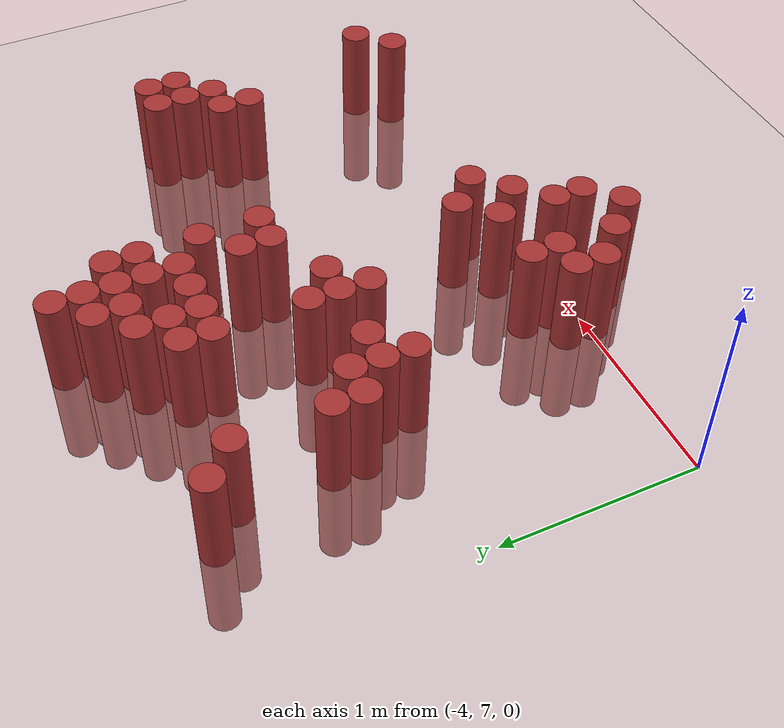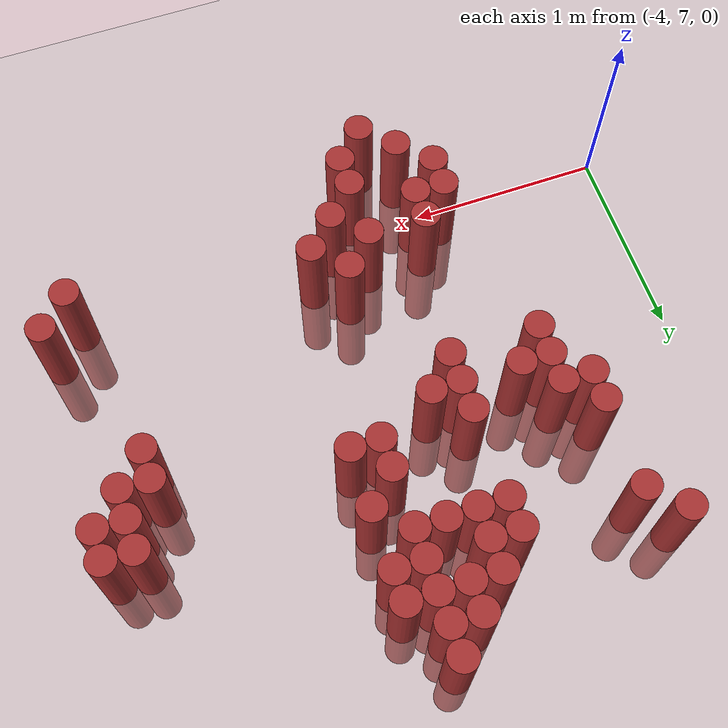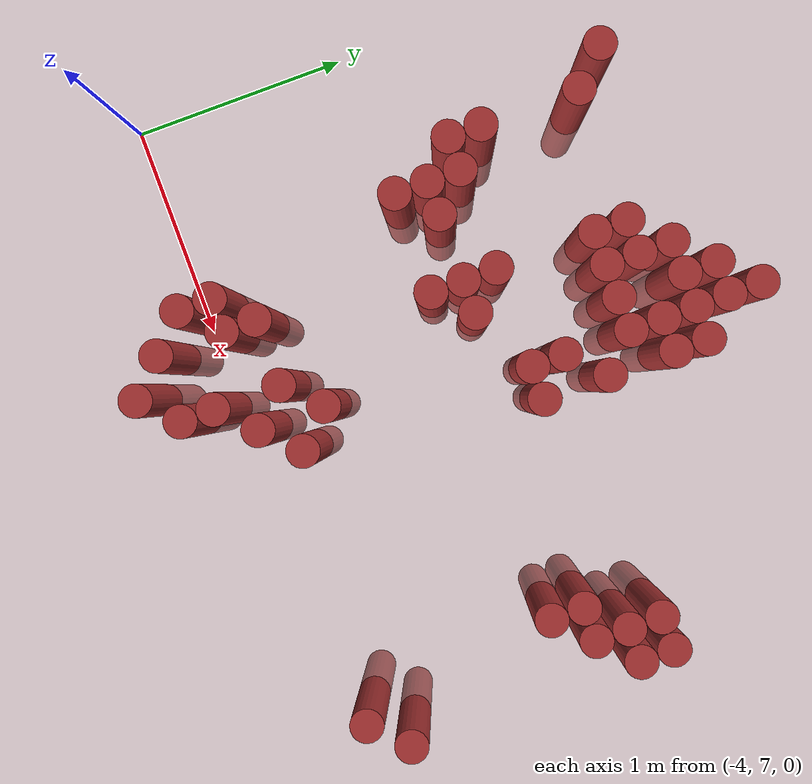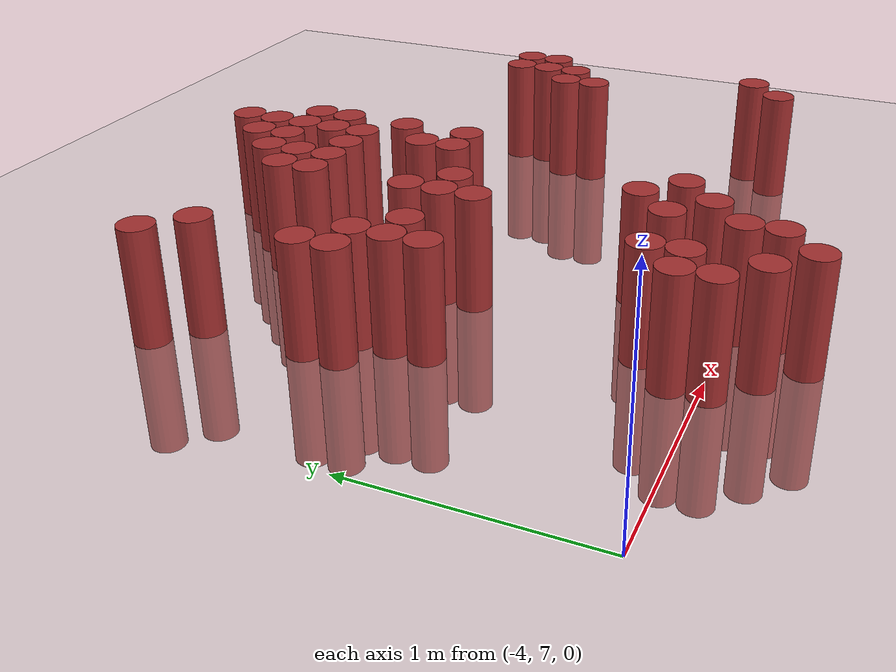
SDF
<sdf version="1.6">
 <world name="default">
  <model name="ground_plane">
   <static>1</static>
   <link name="link">
    <collision name="collision">
     <geometry><plane><normal>0 0 1</normal><size>100 100</size></plane></geometry>
     <surface><friction><ode><mu>100</mu><mu2>50</mu2></ode></friction></surface>
    </collision>
    <visual name="visual">
     <cast_shadows>0</cast_shadows>
     <geometry><plane><normal>0 0 1</normal><size>100 100</size></plane></geometry>
     <material>
      <script><uri>file://media/materials/scripts/gazebo.material</uri><name>Gazebo/Grey</name></script>
     </material>
    </visual>
   </link>
  </model>
  <model name="unit_cylinder_167">
   <static>1</static>
   <pose>-3.525000 9.075000 0.000000 0.000000 0.000000 0.000000</pose>
   <link name="link">
    <inertial>
     <mass>1</mass>
     <inertia><ixx>0.145833</ixx><ixy>0</ixy><ixz>0</ixz><iyy>0.145833</iyy><iyz>0</iyz><izz>0.125</izz></inertia>
    </inertial>
    <collision name="collision">
     <geometry><cylinder><radius>0.075000</radius><length>1</length></cylinder></geometry>
    </collision>
    <visual name="visual">
     <geometry><cylinder><radius>0.075000</radius><length>1</length></cylinder></geometry>
     <material>
      <ambient>0.648000 0.192000 0.192000 1</ambient>
      <diffuse>0.648000 0.192000 0.192000 1</diffuse>
     </material>
     <material>
      <script><name>Gazebo/Grey</name><uri>file://media/materials/scripts/gazebo.material</uri></script>
     </material>
    </visual>
   </link>
  </model>
  <model name="unit_cylinder_172">
   <static>1</static>
   <pose>-3.375000 8.325000 0.000000 0.000000 0.000000 0.000000</pose>
   <link name="link">
    <inertial>
     <mass>1</mass>
     <inertia><ixx>0.145833</ixx><ixy>0</ixy><ixz>0</ixz><iyy>0.145833</iyy><iyz>0</iyz><izz>0.125</izz></inertia>
    </inertial>
    <collision name="collision">
     <geometry><cylinder><radius>0.075000</radius><length>1</length></cylinder></geometry>
    </collision>
    <visual name="visual">
     <geometry><cylinder><radius>0.075000</radius><length>1</length></cylinder></geometry>
     <material>
      <ambient>0.648000 0.192000 0.192000 1</ambient>
      <diffuse>0.648000 0.192000 0.192000 1</diffuse>
     </material>
     <material>
      <script><name>Gazebo/Grey</name><uri>file://media/materials/scripts/gazebo.material</uri></script>
     </material>
    </visual>
   </link>
  </model>
  <model name="unit_cylinder_173">
   <static>1</static>
   <pose>-3.375000 8.475000 0.000000 0.000000 0.000000 0.000000</pose>
   <link name="link">
    <inertial>
     <mass>1</mass>
     <inertia><ixx>0.145833</ixx><ixy>0</ixy><ixz>0</ixz><iyy>0.145833</iyy><iyz>0</iyz><izz>0.125</izz></inertia>
    </inertial>
    <collision name="collision">
     <geometry><cylinder><radius>0.075000</radius><length>1</length></cylinder></geometry>
    </collision>
    <visual name="visual">
     <geometry><cylinder><radius>0.075000</radius><length>1</length></cylinder></geometry>
     <material>
      <ambient>0.648000 0.192000 0.192000 1</ambient>
      <diffuse>0.648000 0.192000 0.192000 1</diffuse>
     </material>
     <material>
      <script><name>Gazebo/Grey</name><uri>file://media/materials/scripts/gazebo.material</uri></script>
     </material>
    </visual>
   </link>
  </model>
  <model name="unit_cylinder_174">
   <static>1</static>
   <pose>-3.375000 8.925000 0.000000 0.000000 0.000000 0.000000</pose>
   <link name="link">
    <inertial>
     <mass>1</mass>
     <inertia><ixx>0.145833</ixx><ixy>0</ixy><ixz>0</ixz><iyy>0.145833</iyy><iyz>0</iyz><izz>0.125</izz></inertia>
    </inertial>
    <collision name="collision">
     <geometry><cylinder><radius>0.075000</radius><length>1</length></cylinder></geometry>
    </collision>
    <visual name="visual">
     <geometry><cylinder><radius>0.075000</radius><length>1</length></cylinder></geometry>
     <material>
      <ambient>0.648000 0.192000 0.192000 1</ambient>
      <diffuse>0.648000 0.192000 0.192000 1</diffuse>
     </material>
     <material>
      <script><name>Gazebo/Grey</name><uri>file://media/materials/scripts/gazebo.material</uri></script>
     </material>
    </visual>
   </link>
  </model>
  <model name="unit_cylinder_179">
   <static>1</static>
   <pose>-3.225000 8.025000 0.000000 0.000000 0.000000 0.000000</pose>
   <link name="link">
    <inertial>
     <mass>1</mass>
     <inertia><ixx>0.145833</ixx><ixy>0</ixy><ixz>0</ixz><iyy>0.145833</iyy><iyz>0</iyz><izz>0.125</izz></inertia>
    </inertial>
    <collision name="collision">
     <geometry><cylinder><radius>0.075000</radius><length>1</length></cylinder></geometry>
    </collision>
    <visual name="visual">
     <geometry><cylinder><radius>0.075000</radius><length>1</length></cylinder></geometry>
     <material>
      <ambient>0.648000 0.192000 0.192000 1</ambient>
      <diffuse>0.648000 0.192000 0.192000 1</diffuse>
     </material>
     <material>
      <script><name>Gazebo/Grey</name><uri>file://media/materials/scripts/gazebo.material</uri></script>
     </material>
    </visual>
   </link>
  </model>
  <model name="unit_cylinder_180">
   <static>1</static>
   <pose>-3.225000 8.175000 0.000000 0.000000 0.000000 0.000000</pose>
   <link name="link">
    <inertial>
     <mass>1</mass>
     <inertia><ixx>0.145833</ixx><ixy>0</ixy><ixz>0</ixz><iyy>0.145833</iyy><iyz>0</iyz><izz>0.125</izz></inertia>
    </inertial>
    <collision name="collision">
     <geometry><cylinder><radius>0.075000</radius><length>1</length></cylinder></geometry>
    </collision>
    <visual name="visual">
     <geometry><cylinder><radius>0.075000</radius><length>1</length></cylinder></geometry>
     <material>
      <ambient>0.648000 0.192000 0.192000 1</ambient>
      <diffuse>0.648000 0.192000 0.192000 1</diffuse>
     </material>
     <material>
      <script><name>Gazebo/Grey</name><uri>file://media/materials/scripts/gazebo.material</uri></script>
     </material>
    </visual>
   </link>
  </model>
  <model name="unit_cylinder_181">
   <static>1</static>
   <pose>-3.225000 8.325000 0.000000 0.000000 0.000000 0.000000</pose>
   <link name="link">
    <inertial>
     <mass>1</mass>
     <inertia><ixx>0.145833</ixx><ixy>0</ixy><ixz>0</ixz><iyy>0.145833</iyy><iyz>0</iyz><izz>0.125</izz></inertia>
    </inertial>
    <collision name="collision">
     <geometry><cylinder><radius>0.075000</radius><length>1</length></cylinder></geometry>
    </collision>
    <visual name="visual">
     <geometry><cylinder><radius>0.075000</radius><length>1</length></cylinder></geometry>
     <material>
      <ambient>0.648000 0.192000 0.192000 1</ambient>
      <diffuse>0.648000 0.192000 0.192000 1</diffuse>
     </material>
     <material>
      <script><name>Gazebo/Grey</name><uri>file://media/materials/scripts/gazebo.material</uri></script>
     </material>
    </visual>
   </link>
  </model>
  <model name="unit_cylinder_185">
   <static>1</static>
   <pose>-3.075000 6.975000 0.000000 0.000000 0.000000 0.000000</pose>
   <link name="link">
    <inertial>
     <mass>1</mass>
     <inertia><ixx>0.145833</ixx><ixy>0</ixy><ixz>0</ixz><iyy>0.145833</iyy><iyz>0</iyz><izz>0.125</izz></inertia>
    </inertial>
    <collision name="collision">
     <geometry><cylinder><radius>0.075000</radius><length>1</length></cylinder></geometry>
    </collision>
    <visual name="visual">
     <geometry><cylinder><radius>0.075000</radius><length>1</length></cylinder></geometry>
     <material>
      <ambient>0.648000 0.192000 0.192000 1</ambient>
      <diffuse>0.648000 0.192000 0.192000 1</diffuse>
     </material>
     <material>
      <script><name>Gazebo/Grey</name><uri>file://media/materials/scripts/gazebo.material</uri></script>
     </material>
    </visual>
   </link>
  </model>
  <model name="unit_cylinder_186">
   <static>1</static>
   <pose>-3.075000 7.125000 0.000000 0.000000 0.000000 0.000000</pose>
   <link name="link">
    <inertial>
     <mass>1</mass>
     <inertia><ixx>0.145833</ixx><ixy>0</ixy><ixz>0</ixz><iyy>0.145833</iyy><iyz>0</iyz><izz>0.125</izz></inertia>
    </inertial>
    <collision name="collision">
     <geometry><cylinder><radius>0.075000</radius><length>1</length></cylinder></geometry>
    </collision>
    <visual name="visual">
     <geometry><cylinder><radius>0.075000</radius><length>1</length></cylinder></geometry>
     <material>
      <ambient>0.648000 0.192000 0.192000 1</ambient>
      <diffuse>0.648000 0.192000 0.192000 1</diffuse>
     </material>
     <material>
      <script><name>Gazebo/Grey</name><uri>file://media/materials/scripts/gazebo.material</uri></script>
     </material>
    </visual>
   </link>
  </model>
  <model name="unit_cylinder_187">
   <static>1</static>
   <pose>-3.075000 8.175000 0.000000 0.000000 0.000000 0.000000</pose>
   <link name="link">
    <inertial>
     <mass>1</mass>
     <inertia><ixx>0.145833</ixx><ixy>0</ixy><ixz>0</ixz><iyy>0.145833</iyy><iyz>0</iyz><izz>0.125</izz></inertia>
    </inertial>
    <collision name="collision">
     <geometry><cylinder><radius>0.075000</radius><length>1</length></cylinder></geometry>
    </collision>
    <visual name="visual">
     <geometry><cylinder><radius>0.075000</radius><length>1</length></cylinder></geometry>
     <material>
      <ambient>0.648000 0.192000 0.192000 1</ambient>
      <diffuse>0.648000 0.192000 0.192000 1</diffuse>
     </material>
     <material>
      <script><name>Gazebo/Grey</name><uri>file://media/materials/scripts/gazebo.material</uri></script>
     </material>
    </visual>
   </link>
  </model>
  <model name="unit_cylinder_190">
   <static>1</static>
   <pose>-2.925000 6.825000 0.000000 0.000000 0.000000 0.000000</pose>
   <link name="link">
    <inertial>
     <mass>1</mass>
     <inertia><ixx>0.145833</ixx><ixy>0</ixy><ixz>0</ixz><iyy>0.145833</iyy><iyz>0</iyz><izz>0.125</izz></inertia>
    </inertial>
    <collision name="collision">
     <geometry><cylinder><radius>0.075000</radius><length>1</length></cylinder></geometry>
    </collision>
    <visual name="visual">
     <geometry><cylinder><radius>0.075000</radius><length>1</length></cylinder></geometry>
     <material>
      <ambient>0.648000 0.192000 0.192000 1</ambient>
      <diffuse>0.648000 0.192000 0.192000 1</diffuse>
     </material>
     <material>
      <script><name>Gazebo/Grey</name><uri>file://media/materials/scripts/gazebo.material</uri></script>
     </material>
    </visual>
   </link>
  </model>
  <model name="unit_cylinder_191">
   <static>1</static>
   <pose>-2.925000 7.125000 0.000000 0.000000 0.000000 0.000000</pose>
   <link name="link">
    <inertial>
     <mass>1</mass>
     <inertia><ixx>0.145833</ixx><ixy>0</ixy><ixz>0</ixz><iyy>0.145833</iyy><iyz>0</iyz><izz>0.125</izz></inertia>
    </inertial>
    <collision name="collision">
     <geometry><cylinder><radius>0.075000</radius><length>1</length></cylinder></geometry>
    </collision>
    <visual name="visual">
     <geometry><cylinder><radius>0.075000</radius><length>1</length></cylinder></geometry>
     <material>
      <ambient>0.648000 0.192000 0.192000 1</ambient>
      <diffuse>0.648000 0.192000 0.192000 1</diffuse>
     </material>
     <material>
      <script><name>Gazebo/Grey</name><uri>file://media/materials/scripts/gazebo.material</uri></script>
     </material>
    </visual>
   </link>
  </model>
  <model name="unit_cylinder_192">
   <static>1</static>
   <pose>-2.925000 7.275000 0.000000 0.000000 0.000000 0.000000</pose>
   <link name="link">
    <inertial>
     <mass>1</mass>
     <inertia><ixx>0.145833</ixx><ixy>0</ixy><ixz>0</ixz><iyy>0.145833</iyy><iyz>0</iyz><izz>0.125</izz></inertia>
    </inertial>
    <collision name="collision">
     <geometry><cylinder><radius>0.075000</radius><length>1</length></cylinder></geometry>
    </collision>
    <visual name="visual">
     <geometry><cylinder><radius>0.075000</radius><length>1</length></cylinder></geometry>
     <material>
      <ambient>0.648000 0.192000 0.192000 1</ambient>
      <diffuse>0.648000 0.192000 0.192000 1</diffuse>
     </material>
     <material>
      <script><name>Gazebo/Grey</name><uri>file://media/materials/scripts/gazebo.material</uri></script>
     </material>
    </visual>
   </link>
  </model>
  <model name="unit_cylinder_194">
   <static>1</static>
   <pose>-2.775000 6.675000 0.000000 0.000000 0.000000 0.000000</pose>
   <link name="link">
    <inertial>
     <mass>1</mass>
     <inertia><ixx>0.145833</ixx><ixy>0</ixy><ixz>0</ixz><iyy>0.145833</iyy><iyz>0</iyz><izz>0.125</izz></inertia>
    </inertial>
    <collision name="collision">
     <geometry><cylinder><radius>0.075000</radius><length>1</length></cylinder></geometry>
    </collision>
    <visual name="visual">
     <geometry><cylinder><radius>0.075000</radius><length>1</length></cylinder></geometry>
     <material>
      <ambient>0.648000 0.192000 0.192000 1</ambient>
      <diffuse>0.648000 0.192000 0.192000 1</diffuse>
     </material>
     <material>
      <script><name>Gazebo/Grey</name><uri>file://media/materials/scripts/gazebo.material</uri></script>
     </material>
    </visual>
   </link>
  </model>
  <model name="unit_cylinder_195">
   <static>1</static>
   <pose>-2.775000 8.025000 0.000000 0.000000 0.000000 0.000000</pose>
   <link name="link">
    <inertial>
     <mass>1</mass>
     <inertia><ixx>0.145833</ixx><ixy>0</ixy><ixz>0</ixz><iyy>0.145833</iyy><iyz>0</iyz><izz>0.125</izz></inertia>
    </inertial>
    <collision name="collision">
     <geometry><cylinder><radius>0.075000</radius><length>1</length></cylinder></geometry>
    </collision>
    <visual name="visual">
     <geometry><cylinder><radius>0.075000</radius><length>1</length></cylinder></geometry>
     <material>
      <ambient>0.648000 0.192000 0.192000 1</ambient>
      <diffuse>0.648000 0.192000 0.192000 1</diffuse>
     </material>
     <material>
      <script><name>Gazebo/Grey</name><uri>file://media/materials/scripts/gazebo.material</uri></script>
     </material>
    </visual>
   </link>
  </model>
  <model name="unit_cylinder_196">
   <static>1</static>
   <pose>-2.775000 8.175000 0.000000 0.000000 0.000000 0.000000</pose>
   <link name="link">
    <inertial>
     <mass>1</mass>
     <inertia><ixx>0.145833</ixx><ixy>0</ixy><ixz>0</ixz><iyy>0.145833</iyy><iyz>0</iyz><izz>0.125</izz></inertia>
    </inertial>
    <collision name="collision">
     <geometry><cylinder><radius>0.075000</radius><length>1</length></cylinder></geometry>
    </collision>
    <visual name="visual">
     <geometry><cylinder><radius>0.075000</radius><length>1</length></cylinder></geometry>
     <material>
      <ambient>0.648000 0.192000 0.192000 1</ambient>
      <diffuse>0.648000 0.192000 0.192000 1</diffuse>
     </material>
     <material>
      <script><name>Gazebo/Grey</name><uri>file://media/materials/scripts/gazebo.material</uri></script>
     </material>
    </visual>
   </link>
  </model>
  <model name="unit_cylinder_197">
   <static>1</static>
   <pose>-2.775000 8.325000 0.000000 0.000000 0.000000 0.000000</pose>
   <link name="link">
    <inertial>
     <mass>1</mass>
     <inertia><ixx>0.145833</ixx><ixy>0</ixy><ixz>0</ixz><iyy>0.145833</iyy><iyz>0</iyz><izz>0.125</izz></inertia>
    </inertial>
    <collision name="collision">
     <geometry><cylinder><radius>0.075000</radius><length>1</length></cylinder></geometry>
    </collision>
    <visual name="visual">
     <geometry><cylinder><radius>0.075000</radius><length>1</length></cylinder></geometry>
     <material>
      <ambient>0.648000 0.192000 0.192000 1</ambient>
      <diffuse>0.648000 0.192000 0.192000 1</diffuse>
     </material>
     <material>
      <script><name>Gazebo/Grey</name><uri>file://media/materials/scripts/gazebo.material</uri></script>
     </material>
    </visual>
   </link>
  </model>
  <model name="unit_cylinder_198">
   <static>1</static>
   <pose>-2.775000 8.775000 0.000000 0.000000 0.000000 0.000000</pose>
   <link name="link">
    <inertial>
     <mass>1</mass>
     <inertia><ixx>0.145833</ixx><ixy>0</ixy><ixz>0</ixz><iyy>0.145833</iyy><iyz>0</iyz><izz>0.125</izz></inertia>
    </inertial>
    <collision name="collision">
     <geometry><cylinder><radius>0.075000</radius><length>1</length></cylinder></geometry>
    </collision>
    <visual name="visual">
     <geometry><cylinder><radius>0.075000</radius><length>1</length></cylinder></geometry>
     <material>
      <ambient>0.648000 0.192000 0.192000 1</ambient>
      <diffuse>0.648000 0.192000 0.192000 1</diffuse>
     </material>
     <material>
      <script><name>Gazebo/Grey</name><uri>file://media/materials/scripts/gazebo.material</uri></script>
     </material>
    </visual>
   </link>
  </model>
  <model name="unit_cylinder_199">
   <static>1</static>
   <pose>-2.775000 8.925000 0.000000 0.000000 0.000000 0.000000</pose>
   <link name="link">
    <inertial>
     <mass>1</mass>
     <inertia><ixx>0.145833</ixx><ixy>0</ixy><ixz>0</ixz><iyy>0.145833</iyy><iyz>0</iyz><izz>0.125</izz></inertia>
    </inertial>
    <collision name="collision">
     <geometry><cylinder><radius>0.075000</radius><length>1</length></cylinder></geometry>
    </collision>
    <visual name="visual">
     <geometry><cylinder><radius>0.075000</radius><length>1</length></cylinder></geometry>
     <material>
      <ambient>0.648000 0.192000 0.192000 1</ambient>
      <diffuse>0.648000 0.192000 0.192000 1</diffuse>
     </material>
     <material>
      <script><name>Gazebo/Grey</name><uri>file://media/materials/scripts/gazebo.material</uri></script>
     </material>
    </visual>
   </link>
  </model>
  <model name="unit_cylinder_200">
   <static>1</static>
   <pose>-2.625000 6.825000 0.000000 0.000000 0.000000 0.000000</pose>
   <link name="link">
    <inertial>
     <mass>1</mass>
     <inertia><ixx>0.145833</ixx><ixy>0</ixy><ixz>0</ixz><iyy>0.145833</iyy><iyz>0</iyz><izz>0.125</izz></inertia>
    </inertial>
    <collision name="collision">
     <geometry><cylinder><radius>0.075000</radius><length>1</length></cylinder></geometry>
    </collision>
    <visual name="visual">
     <geometry><cylinder><radius>0.075000</radius><length>1</length></cylinder></geometry>
     <material>
      <ambient>0.648000 0.192000 0.192000 1</ambient>
      <diffuse>0.648000 0.192000 0.192000 1</diffuse>
     </material>
     <material>
      <script><name>Gazebo/Grey</name><uri>file://media/materials/scripts/gazebo.material</uri></script>
     </material>
    </visual>
   </link>
  </model>
  <model name="unit_cylinder_201">
   <static>1</static>
   <pose>-2.625000 6.975000 0.000000 0.000000 0.000000 0.000000</pose>
   <link name="link">
    <inertial>
     <mass>1</mass>
     <inertia><ixx>0.145833</ixx><ixy>0</ixy><ixz>0</ixz><iyy>0.145833</iyy><iyz>0</iyz><izz>0.125</izz></inertia>
    </inertial>
    <collision name="collision">
     <geometry><cylinder><radius>0.075000</radius><length>1</length></cylinder></geometry>
    </collision>
    <visual name="visual">
     <geometry><cylinder><radius>0.075000</radius><length>1</length></cylinder></geometry>
     <material>
      <ambient>0.648000 0.192000 0.192000 1</ambient>
      <diffuse>0.648000 0.192000 0.192000 1</diffuse>
     </material>
     <material>
      <script><name>Gazebo/Grey</name><uri>file://media/materials/scripts/gazebo.material</uri></script>
     </material>
    </visual>
   </link>
  </model>
  <model name="unit_cylinder_202">
   <static>1</static>
   <pose>-2.625000 7.275000 0.000000 0.000000 0.000000 0.000000</pose>
   <link name="link">
    <inertial>
     <mass>1</mass>
     <inertia><ixx>0.145833</ixx><ixy>0</ixy><ixz>0</ixz><iyy>0.145833</iyy><iyz>0</iyz><izz>0.125</izz></inertia>
    </inertial>
    <collision name="collision">
     <geometry><cylinder><radius>0.075000</radius><length>1</length></cylinder></geometry>
    </collision>
    <visual name="visual">
     <geometry><cylinder><radius>0.075000</radius><length>1</length></cylinder></geometry>
     <material>
      <ambient>0.648000 0.192000 0.192000 1</ambient>
      <diffuse>0.648000 0.192000 0.192000 1</diffuse>
     </material>
     <material>
      <script><name>Gazebo/Grey</name><uri>file://media/materials/scripts/gazebo.material</uri></script>
     </material>
    </visual>
   </link>
  </model>
  <model name="unit_cylinder_203">
   <static>1</static>
   <pose>-2.625000 8.175000 0.000000 0.000000 0.000000 0.000000</pose>
   <link name="link">
    <inertial>
     <mass>1</mass>
     <inertia><ixx>0.145833</ixx><ixy>0</ixy><ixz>0</ixz><iyy>0.145833</iyy><iyz>0</iyz><izz>0.125</izz></inertia>
    </inertial>
    <collision name="collision">
     <geometry><cylinder><radius>0.075000</radius><length>1</length></cylinder></geometry>
    </collision>
    <visual name="visual">
     <geometry><cylinder><radius>0.075000</radius><length>1</length></cylinder></geometry>
     <material>
      <ambient>0.648000 0.192000 0.192000 1</ambient>
      <diffuse>0.648000 0.192000 0.192000 1</diffuse>
     </material>
     <material>
      <script><name>Gazebo/Grey</name><uri>file://media/materials/scripts/gazebo.material</uri></script>
     </material>
    </visual>
   </link>
  </model>
  <model name="unit_cylinder_204">
   <static>1</static>
   <pose>-2.625000 8.775000 0.000000 0.000000 0.000000 0.000000</pose>
   <link name="link">
    <inertial>
     <mass>1</mass>
     <inertia><ixx>0.145833</ixx><ixy>0</ixy><ixz>0</ixz><iyy>0.145833</iyy><iyz>0</iyz><izz>0.125</izz></inertia>
    </inertial>
    <collision name="collision">
     <geometry><cylinder><radius>0.075000</radius><length>1</length></cylinder></geometry>
    </collision>
    <visual name="visual">
     <geometry><cylinder><radius>0.075000</radius><length>1</length></cylinder></geometry>
     <material>
      <ambient>0.648000 0.192000 0.192000 1</ambient>
      <diffuse>0.648000 0.192000 0.192000 1</diffuse>
     </material>
     <material>
      <script><name>Gazebo/Grey</name><uri>file://media/materials/scripts/gazebo.material</uri></script>
     </material>
    </visual>
   </link>
  </model>
  <model name="unit_cylinder_205">
   <static>1</static>
   <pose>-2.625000 8.925000 0.000000 0.000000 0.000000 0.000000</pose>
   <link name="link">
    <inertial>
     <mass>1</mass>
     <inertia><ixx>0.145833</ixx><ixy>0</ixy><ixz>0</ixz><iyy>0.145833</iyy><iyz>0</iyz><izz>0.125</izz></inertia>
    </inertial>
    <collision name="collision">
     <geometry><cylinder><radius>0.075000</radius><length>1</length></cylinder></geometry>
    </collision>
    <visual name="visual">
     <geometry><cylinder><radius>0.075000</radius><length>1</length></cylinder></geometry>
     <material>
      <ambient>0.648000 0.192000 0.192000 1</ambient>
      <diffuse>0.648000 0.192000 0.192000 1</diffuse>
     </material>
     <material>
      <script><name>Gazebo/Grey</name><uri>file://media/materials/scripts/gazebo.material</uri></script>
     </material>
    </visual>
   </link>
  </model>
  <model name="unit_cylinder_206">
   <static>1</static>
   <pose>-2.625000 9.075000 0.000000 0.000000 0.000000 0.000000</pose>
   <link name="link">
    <inertial>
     <mass>1</mass>
     <inertia><ixx>0.145833</ixx><ixy>0</ixy><ixz>0</ixz><iyy>0.145833</iyy><iyz>0</iyz><izz>0.125</izz></inertia>
    </inertial>
    <collision name="collision">
     <geometry><cylinder><radius>0.075000</radius><length>1</length></cylinder></geometry>
    </collision>
    <visual name="visual">
     <geometry><cylinder><radius>0.075000</radius><length>1</length></cylinder></geometry>
     <material>
      <ambient>0.648000 0.192000 0.192000 1</ambient>
      <diffuse>0.648000 0.192000 0.192000 1</diffuse>
     </material>
     <material>
      <script><name>Gazebo/Grey</name><uri>file://media/materials/scripts/gazebo.material</uri></script>
     </material>
    </visual>
   </link>
  </model>
  <model name="unit_cylinder_207">
   <static>1</static>
   <pose>-2.475000 7.125000 0.000000 0.000000 0.000000 0.000000</pose>
   <link name="link">
    <inertial>
     <mass>1</mass>
     <inertia><ixx>0.145833</ixx><ixy>0</ixy><ixz>0</ixz><iyy>0.145833</iyy><iyz>0</iyz><izz>0.125</izz></inertia>
    </inertial>
    <collision name="collision">
     <geometry><cylinder><radius>0.075000</radius><length>1</length></cylinder></geometry>
    </collision>
    <visual name="visual">
     <geometry><cylinder><radius>0.075000</radius><length>1</length></cylinder></geometry>
     <material>
      <ambient>0.648000 0.192000 0.192000 1</ambient>
      <diffuse>0.648000 0.192000 0.192000 1</diffuse>
     </material>
     <material>
      <script><name>Gazebo/Grey</name><uri>file://media/materials/scripts/gazebo.material</uri></script>
     </material>
    </visual>
   </link>
  </model>
  <model name="unit_cylinder_208">
   <static>1</static>
   <pose>-2.475000 7.425000 0.000000 0.000000 0.000000 0.000000</pose>
   <link name="link">
    <inertial>
     <mass>1</mass>
     <inertia><ixx>0.145833</ixx><ixy>0</ixy><ixz>0</ixz><iyy>0.145833</iyy><iyz>0</iyz><izz>0.125</izz></inertia>
    </inertial>
    <collision name="collision">
     <geometry><cylinder><radius>0.075000</radius><length>1</length></cylinder></geometry>
    </collision>
    <visual name="visual">
     <geometry><cylinder><radius>0.075000</radius><length>1</length></cylinder></geometry>
     <material>
      <ambient>0.648000 0.192000 0.192000 1</ambient>
      <diffuse>0.648000 0.192000 0.192000 1</diffuse>
     </material>
     <material>
      <script><name>Gazebo/Grey</name><uri>file://media/materials/scripts/gazebo.material</uri></script>
     </material>
    </visual>
   </link>
  </model>
  <model name="unit_cylinder_209">
   <static>1</static>
   <pose>-2.475000 8.775000 0.000000 0.000000 0.000000 0.000000</pose>
   <link name="link">
    <inertial>
     <mass>1</mass>
     <inertia><ixx>0.145833</ixx><ixy>0</ixy><ixz>0</ixz><iyy>0.145833</iyy><iyz>0</iyz><izz>0.125</izz></inertia>
    </inertial>
    <collision name="collision">
     <geometry><cylinder><radius>0.075000</radius><length>1</length></cylinder></geometry>
    </collision>
    <visual name="visual">
     <geometry><cylinder><radius>0.075000</radius><length>1</length></cylinder></geometry>
     <material>
      <ambient>0.648000 0.192000 0.192000 1</ambient>
      <diffuse>0.648000 0.192000 0.192000 1</diffuse>
     </material>
     <material>
      <script><name>Gazebo/Grey</name><uri>file://media/materials/scripts/gazebo.material</uri></script>
     </material>
    </visual>
   </link>
  </model>
  <model name="unit_cylinder_210">
   <static>1</static>
   <pose>-2.475000 9.075000 0.000000 0.000000 0.000000 0.000000</pose>
   <link name="link">
    <inertial>
     <mass>1</mass>
     <inertia><ixx>0.145833</ixx><ixy>0</ixy><ixz>0</ixz><iyy>0.145833</iyy><iyz>0</iyz><izz>0.125</izz></inertia>
    </inertial>
    <collision name="collision">
     <geometry><cylinder><radius>0.075000</radius><length>1</length></cylinder></geometry>
    </collision>
    <visual name="visual">
     <geometry><cylinder><radius>0.075000</radius><length>1</length></cylinder></geometry>
     <material>
      <ambient>0.648000 0.192000 0.192000 1</ambient>
      <diffuse>0.648000 0.192000 0.192000 1</diffuse>
     </material>
     <material>
      <script><name>Gazebo/Grey</name><uri>file://media/materials/scripts/gazebo.material</uri></script>
     </material>
    </visual>
   </link>
  </model>
  <model name="unit_cylinder_211">
   <static>1</static>
   <pose>-2.475000 9.225000 0.000000 0.000000 0.000000 0.000000</pose>
   <link name="link">
    <inertial>
     <mass>1</mass>
     <inertia><ixx>0.145833</ixx><ixy>0</ixy><ixz>0</ixz><iyy>0.145833</iyy><iyz>0</iyz><izz>0.125</izz></inertia>
    </inertial>
    <collision name="collision">
     <geometry><cylinder><radius>0.075000</radius><length>1</length></cylinder></geometry>
    </collision>
    <visual name="visual">
     <geometry><cylinder><radius>0.075000</radius><length>1</length></cylinder></geometry>
     <material>
      <ambient>0.648000 0.192000 0.192000 1</ambient>
      <diffuse>0.648000 0.192000 0.192000 1</diffuse>
     </material>
     <material>
      <script><name>Gazebo/Grey</name><uri>file://media/materials/scripts/gazebo.material</uri></script>
     </material>
    </visual>
   </link>
  </model>
  <model name="unit_cylinder_212">
   <static>1</static>
   <pose>-2.325000 7.275000 0.000000 0.000000 0.000000 0.000000</pose>
   <link name="link">
    <inertial>
     <mass>1</mass>
     <inertia><ixx>0.145833</ixx><ixy>0</ixy><ixz>0</ixz><iyy>0.145833</iyy><iyz>0</iyz><izz>0.125</izz></inertia>
    </inertial>
    <collision name="collision">
     <geometry><cylinder><radius>0.075000</radius><length>1</length></cylinder></geometry>
    </collision>
    <visual name="visual">
     <geometry><cylinder><radius>0.075000</radius><length>1</length></cylinder></geometry>
     <material>
      <ambient>0.648000 0.192000 0.192000 1</ambient>
      <diffuse>0.648000 0.192000 0.192000 1</diffuse>
     </material>
     <material>
      <script><name>Gazebo/Grey</name><uri>file://media/materials/scripts/gazebo.material</uri></script>
     </material>
    </visual>
   </link>
  </model>
  <model name="unit_cylinder_213">
   <static>1</static>
   <pose>-2.325000 8.325000 0.000000 0.000000 0.000000 0.000000</pose>
   <link name="link">
    <inertial>
     <mass>1</mass>
     <inertia><ixx>0.145833</ixx><ixy>0</ixy><ixz>0</ixz><iyy>0.145833</iyy><iyz>0</iyz><izz>0.125</izz></inertia>
    </inertial>
    <collision name="collision">
     <geometry><cylinder><radius>0.075000</radius><length>1</length></cylinder></geometry>
    </collision>
    <visual name="visual">
     <geometry><cylinder><radius>0.075000</radius><length>1</length></cylinder></geometry>
     <material>
      <ambient>0.648000 0.192000 0.192000 1</ambient>
      <diffuse>0.648000 0.192000 0.192000 1</diffuse>
     </material>
     <material>
      <script><name>Gazebo/Grey</name><uri>file://media/materials/scripts/gazebo.material</uri></script>
     </material>
    </visual>
   </link>
  </model>
  <model name="unit_cylinder_214">
   <static>1</static>
   <pose>-2.325000 8.475000 0.000000 0.000000 0.000000 0.000000</pose>
   <link name="link">
    <inertial>
     <mass>1</mass>
     <inertia><ixx>0.145833</ixx><ixy>0</ixy><ixz>0</ixz><iyy>0.145833</iyy><iyz>0</iyz><izz>0.125</izz></inertia>
    </inertial>
    <collision name="collision">
     <geometry><cylinder><radius>0.075000</radius><length>1</length></cylinder></geometry>
    </collision>
    <visual name="visual">
     <geometry><cylinder><radius>0.075000</radius><length>1</length></cylinder></geometry>
     <material>
      <ambient>0.648000 0.192000 0.192000 1</ambient>
      <diffuse>0.648000 0.192000 0.192000 1</diffuse>
     </material>
     <material>
      <script><name>Gazebo/Grey</name><uri>file://media/materials/scripts/gazebo.material</uri></script>
     </material>
    </visual>
   </link>
  </model>
  <model name="unit_cylinder_215">
   <static>1</static>
   <pose>-2.325000 8.775000 0.000000 0.000000 0.000000 0.000000</pose>
   <link name="link">
    <inertial>
     <mass>1</mass>
     <inertia><ixx>0.145833</ixx><ixy>0</ixy><ixz>0</ixz><iyy>0.145833</iyy><iyz>0</iyz><izz>0.125</izz></inertia>
    </inertial>
    <collision name="collision">
     <geometry><cylinder><radius>0.075000</radius><length>1</length></cylinder></geometry>
    </collision>
    <visual name="visual">
     <geometry><cylinder><radius>0.075000</radius><length>1</length></cylinder></geometry>
     <material>
      <ambient>0.648000 0.192000 0.192000 1</ambient>
      <diffuse>0.648000 0.192000 0.192000 1</diffuse>
     </material>
     <material>
      <script><name>Gazebo/Grey</name><uri>file://media/materials/scripts/gazebo.material</uri></script>
     </material>
    </visual>
   </link>
  </model>
  <model name="unit_cylinder_216">
   <static>1</static>
   <pose>-2.325000 8.925000 0.000000 0.000000 0.000000 0.000000</pose>
   <link name="link">
    <inertial>
     <mass>1</mass>
     <inertia><ixx>0.145833</ixx><ixy>0</ixy><ixz>0</ixz><iyy>0.145833</iyy><iyz>0</iyz><izz>0.125</izz></inertia>
    </inertial>
    <collision name="collision">
     <geometry><cylinder><radius>0.075000</radius><length>1</length></cylinder></geometry>
    </collision>
    <visual name="visual">
     <geometry><cylinder><radius>0.075000</radius><length>1</length></cylinder></geometry>
     <material>
      <ambient>0.648000 0.192000 0.192000 1</ambient>
      <diffuse>0.648000 0.192000 0.192000 1</diffuse>
     </material>
     <material>
      <script><name>Gazebo/Grey</name><uri>file://media/materials/scripts/gazebo.material</uri></script>
     </material>
    </visual>
   </link>
  </model>
  <model name="unit_cylinder_217">
   <static>1</static>
   <pose>-2.325000 9.075000 0.000000 0.000000 0.000000 0.000000</pose>
   <link name="link">
    <inertial>
     <mass>1</mass>
     <inertia><ixx>0.145833</ixx><ixy>0</ixy><ixz>0</ixz><iyy>0.145833</iyy><iyz>0</iyz><izz>0.125</izz></inertia>
    </inertial>
    <collision name="collision">
     <geometry><cylinder><radius>0.075000</radius><length>1</length></cylinder></geometry>
    </collision>
    <visual name="visual">
     <geometry><cylinder><radius>0.075000</radius><length>1</length></cylinder></geometry>
     <material>
      <ambient>0.648000 0.192000 0.192000 1</ambient>
      <diffuse>0.648000 0.192000 0.192000 1</diffuse>
     </material>
     <material>
      <script><name>Gazebo/Grey</name><uri>file://media/materials/scripts/gazebo.material</uri></script>
     </material>
    </visual>
   </link>
  </model>
  <model name="unit_cylinder_218">
   <static>1</static>
   <pose>-2.325000 9.225000 0.000000 0.000000 0.000000 0.000000</pose>
   <link name="link">
    <inertial>
     <mass>1</mass>
     <inertia><ixx>0.145833</ixx><ixy>0</ixy><ixz>0</ixz><iyy>0.145833</iyy><iyz>0</iyz><izz>0.125</izz></inertia>
    </inertial>
    <collision name="collision">
     <geometry><cylinder><radius>0.075000</radius><length>1</length></cylinder></geometry>
    </collision>
    <visual name="visual">
     <geometry><cylinder><radius>0.075000</radius><length>1</length></cylinder></geometry>
     <material>
      <ambient>0.648000 0.192000 0.192000 1</ambient>
      <diffuse>0.648000 0.192000 0.192000 1</diffuse>
     </material>
     <material>
      <script><name>Gazebo/Grey</name><uri>file://media/materials/scripts/gazebo.material</uri></script>
     </material>
    </visual>
   </link>
  </model>
  <model name="unit_cylinder_219">
   <static>1</static>
   <pose>-2.325000 9.375000 0.000000 0.000000 0.000000 0.000000</pose>
   <link name="link">
    <inertial>
     <mass>1</mass>
     <inertia><ixx>0.145833</ixx><ixy>0</ixy><ixz>0</ixz><iyy>0.145833</iyy><iyz>0</iyz><izz>0.125</izz></inertia>
    </inertial>
    <collision name="collision">
     <geometry><cylinder><radius>0.075000</radius><length>1</length></cylinder></geometry>
    </collision>
    <visual name="visual">
     <geometry><cylinder><radius>0.075000</radius><length>1</length></cylinder></geometry>
     <material>
      <ambient>0.648000 0.192000 0.192000 1</ambient>
      <diffuse>0.648000 0.192000 0.192000 1</diffuse>
     </material>
     <material>
      <script><name>Gazebo/Grey</name><uri>file://media/materials/scripts/gazebo.material</uri></script>
     </material>
    </visual>
   </link>
  </model>
  <model name="unit_cylinder_221">
   <static>1</static>
   <pose>-2.175000 8.325000 0.000000 0.000000 0.000000 0.000000</pose>
   <link name="link">
    <inertial>
     <mass>1</mass>
     <inertia><ixx>0.145833</ixx><ixy>0</ixy><ixz>0</ixz><iyy>0.145833</iyy><iyz>0</iyz><izz>0.125</izz></inertia>
    </inertial>
    <collision name="collision">
     <geometry><cylinder><radius>0.075000</radius><length>1</length></cylinder></geometry>
    </collision>
    <visual name="visual">
     <geometry><cylinder><radius>0.075000</radius><length>1</length></cylinder></geometry>
     <material>
      <ambient>0.648000 0.192000 0.192000 1</ambient>
      <diffuse>0.648000 0.192000 0.192000 1</diffuse>
     </material>
     <material>
      <script><name>Gazebo/Grey</name><uri>file://media/materials/scripts/gazebo.material</uri></script>
     </material>
    </visual>
   </link>
  </model>
  <model name="unit_cylinder_222">
   <static>1</static>
   <pose>-2.175000 8.625000 0.000000 0.000000 0.000000 0.000000</pose>
   <link name="link">
    <inertial>
     <mass>1</mass>
     <inertia><ixx>0.145833</ixx><ixy>0</ixy><ixz>0</ixz><iyy>0.145833</iyy><iyz>0</iyz><izz>0.125</izz></inertia>
    </inertial>
    <collision name="collision">
     <geometry><cylinder><radius>0.075000</radius><length>1</length></cylinder></geometry>
    </collision>
    <visual name="visual">
     <geometry><cylinder><radius>0.075000</radius><length>1</length></cylinder></geometry>
     <material>
      <ambient>0.648000 0.192000 0.192000 1</ambient>
      <diffuse>0.648000 0.192000 0.192000 1</diffuse>
     </material>
     <material>
      <script><name>Gazebo/Grey</name><uri>file://media/materials/scripts/gazebo.material</uri></script>
     </material>
    </visual>
   </link>
  </model>
  <model name="unit_cylinder_223">
   <static>1</static>
   <pose>-2.175000 8.925000 0.000000 0.000000 0.000000 0.000000</pose>
   <link name="link">
    <inertial>
     <mass>1</mass>
     <inertia><ixx>0.145833</ixx><ixy>0</ixy><ixz>0</ixz><iyy>0.145833</iyy><iyz>0</iyz><izz>0.125</izz></inertia>
    </inertial>
    <collision name="collision">
     <geometry><cylinder><radius>0.075000</radius><length>1</length></cylinder></geometry>
    </collision>
    <visual name="visual">
     <geometry><cylinder><radius>0.075000</radius><length>1</length></cylinder></geometry>
     <material>
      <ambient>0.648000 0.192000 0.192000 1</ambient>
      <diffuse>0.648000 0.192000 0.192000 1</diffuse>
     </material>
     <material>
      <script><name>Gazebo/Grey</name><uri>file://media/materials/scripts/gazebo.material</uri></script>
     </material>
    </visual>
   </link>
  </model>
  <model name="unit_cylinder_224">
   <static>1</static>
   <pose>-2.175000 9.075000 0.000000 0.000000 0.000000 0.000000</pose>
   <link name="link">
    <inertial>
     <mass>1</mass>
     <inertia><ixx>0.145833</ixx><ixy>0</ixy><ixz>0</ixz><iyy>0.145833</iyy><iyz>0</iyz><izz>0.125</izz></inertia>
    </inertial>
    <collision name="collision">
     <geometry><cylinder><radius>0.075000</radius><length>1</length></cylinder></geometry>
    </collision>
    <visual name="visual">
     <geometry><cylinder><radius>0.075000</radius><length>1</length></cylinder></geometry>
     <material>
      <ambient>0.648000 0.192000 0.192000 1</ambient>
      <diffuse>0.648000 0.192000 0.192000 1</diffuse>
     </material>
     <material>
      <script><name>Gazebo/Grey</name><uri>file://media/materials/scripts/gazebo.material</uri></script>
     </material>
    </visual>
   </link>
  </model>
  <model name="unit_cylinder_238">
   <static>1</static>
   <pose>-1.275000 8.025000 0.000000 0.000000 0.000000 0.000000</pose>
   <link name="link">
    <inertial>
     <mass>1</mass>
     <inertia><ixx>0.145833</ixx><ixy>0</ixy><ixz>0</ixz><iyy>0.145833</iyy><iyz>0</iyz><izz>0.125</izz></inertia>
    </inertial>
    <collision name="collision">
     <geometry><cylinder><radius>0.075000</radius><length>1</length></cylinder></geometry>
    </collision>
    <visual name="visual">
     <geometry><cylinder><radius>0.075000</radius><length>1</length></cylinder></geometry>
     <material>
      <ambient>0.648000 0.192000 0.192000 1</ambient>
      <diffuse>0.648000 0.192000 0.192000 1</diffuse>
     </material>
     <material>
      <script><name>Gazebo/Grey</name><uri>file://media/materials/scripts/gazebo.material</uri></script>
     </material>
    </visual>
   </link>
  </model>
  <model name="unit_cylinder_239">
   <static>1</static>
   <pose>-1.275000 8.175000 0.000000 0.000000 0.000000 0.000000</pose>
   <link name="link">
    <inertial>
     <mass>1</mass>
     <inertia><ixx>0.145833</ixx><ixy>0</ixy><ixz>0</ixz><iyy>0.145833</iyy><iyz>0</iyz><izz>0.125</izz></inertia>
    </inertial>
    <collision name="collision">
     <geometry><cylinder><radius>0.075000</radius><length>1</length></cylinder></geometry>
    </collision>
    <visual name="visual">
     <geometry><cylinder><radius>0.075000</radius><length>1</length></cylinder></geometry>
     <material>
      <ambient>0.648000 0.192000 0.192000 1</ambient>
      <diffuse>0.648000 0.192000 0.192000 1</diffuse>
     </material>
     <material>
      <script><name>Gazebo/Grey</name><uri>file://media/materials/scripts/gazebo.material</uri></script>
     </material>
    </visual>
   </link>
  </model>
  <model name="unit_cylinder_240">
   <static>1</static>
   <pose>-1.125000 7.125000 0.000000 0.000000 0.000000 0.000000</pose>
   <link name="link">
    <inertial>
     <mass>1</mass>
     <inertia><ixx>0.145833</ixx><ixy>0</ixy><ixz>0</ixz><iyy>0.145833</iyy><iyz>0</iyz><izz>0.125</izz></inertia>
    </inertial>
    <collision name="collision">
     <geometry><cylinder><radius>0.075000</radius><length>1</length></cylinder></geometry>
    </collision>
    <visual name="visual">
     <geometry><cylinder><radius>0.075000</radius><length>1</length></cylinder></geometry>
     <material>
      <ambient>0.648000 0.192000 0.192000 1</ambient>
      <diffuse>0.648000 0.192000 0.192000 1</diffuse>
     </material>
     <material>
      <script><name>Gazebo/Grey</name><uri>file://media/materials/scripts/gazebo.material</uri></script>
     </material>
    </visual>
   </link>
  </model>
  <model name="unit_cylinder_241">
   <static>1</static>
   <pose>-1.125000 8.175000 0.000000 0.000000 0.000000 0.000000</pose>
   <link name="link">
    <inertial>
     <mass>1</mass>
     <inertia><ixx>0.145833</ixx><ixy>0</ixy><ixz>0</ixz><iyy>0.145833</iyy><iyz>0</iyz><izz>0.125</izz></inertia>
    </inertial>
    <collision name="collision">
     <geometry><cylinder><radius>0.075000</radius><length>1</length></cylinder></geometry>
    </collision>
    <visual name="visual">
     <geometry><cylinder><radius>0.075000</radius><length>1</length></cylinder></geometry>
     <material>
      <ambient>0.648000 0.192000 0.192000 1</ambient>
      <diffuse>0.648000 0.192000 0.192000 1</diffuse>
     </material>
     <material>
      <script><name>Gazebo/Grey</name><uri>file://media/materials/scripts/gazebo.material</uri></script>
     </material>
    </visual>
   </link>
  </model>
  <model name="unit_cylinder_242">
   <static>1</static>
   <pose>-1.125000 8.325000 0.000000 0.000000 0.000000 0.000000</pose>
   <link name="link">
    <inertial>
     <mass>1</mass>
     <inertia><ixx>0.145833</ixx><ixy>0</ixy><ixz>0</ixz><iyy>0.145833</iyy><iyz>0</iyz><izz>0.125</izz></inertia>
    </inertial>
    <collision name="collision">
     <geometry><cylinder><radius>0.075000</radius><length>1</length></cylinder></geometry>
    </collision>
    <visual name="visual">
     <geometry><cylinder><radius>0.075000</radius><length>1</length></cylinder></geometry>
     <material>
      <ambient>0.648000 0.192000 0.192000 1</ambient>
      <diffuse>0.648000 0.192000 0.192000 1</diffuse>
     </material>
     <material>
      <script><name>Gazebo/Grey</name><uri>file://media/materials/scripts/gazebo.material</uri></script>
     </material>
    </visual>
   </link>
  </model>
  <model name="unit_cylinder_243">
   <static>1</static>
   <pose>-1.125000 8.475000 0.000000 0.000000 0.000000 0.000000</pose>
   <link name="link">
    <inertial>
     <mass>1</mass>
     <inertia><ixx>0.145833</ixx><ixy>0</ixy><ixz>0</ixz><iyy>0.145833</iyy><iyz>0</iyz><izz>0.125</izz></inertia>
    </inertial>
    <collision name="collision">
     <geometry><cylinder><radius>0.075000</radius><length>1</length></cylinder></geometry>
    </collision>
    <visual name="visual">
     <geometry><cylinder><radius>0.075000</radius><length>1</length></cylinder></geometry>
     <material>
      <ambient>0.648000 0.192000 0.192000 1</ambient>
      <diffuse>0.648000 0.192000 0.192000 1</diffuse>
     </material>
     <material>
      <script><name>Gazebo/Grey</name><uri>file://media/materials/scripts/gazebo.material</uri></script>
     </material>
    </visual>
   </link>
  </model>
  <model name="unit_cylinder_244">
   <static>1</static>
   <pose>-0.975000 7.275000 0.000000 0.000000 0.000000 0.000000</pose>
   <link name="link">
    <inertial>
     <mass>1</mass>
     <inertia><ixx>0.145833</ixx><ixy>0</ixy><ixz>0</ixz><iyy>0.145833</iyy><iyz>0</iyz><izz>0.125</izz></inertia>
    </inertial>
    <collision name="collision">
     <geometry><cylinder><radius>0.075000</radius><length>1</length></cylinder></geometry>
    </collision>
    <visual name="visual">
     <geometry><cylinder><radius>0.075000</radius><length>1</length></cylinder></geometry>
     <material>
      <ambient>0.648000 0.192000 0.192000 1</ambient>
      <diffuse>0.648000 0.192000 0.192000 1</diffuse>
     </material>
     <material>
      <script><name>Gazebo/Grey</name><uri>file://media/materials/scripts/gazebo.material</uri></script>
     </material>
    </visual>
   </link>
  </model>
  <model name="unit_cylinder_245">
   <static>1</static>
   <pose>-0.975000 8.325000 0.000000 0.000000 0.000000 0.000000</pose>
   <link name="link">
    <inertial>
     <mass>1</mass>
     <inertia><ixx>0.145833</ixx><ixy>0</ixy><ixz>0</ixz><iyy>0.145833</iyy><iyz>0</iyz><izz>0.125</izz></inertia>
    </inertial>
    <collision name="collision">
     <geometry><cylinder><radius>0.075000</radius><length>1</length></cylinder></geometry>
    </collision>
    <visual name="visual">
     <geometry><cylinder><radius>0.075000</radius><length>1</length></cylinder></geometry>
     <material>
      <ambient>0.648000 0.192000 0.192000 1</ambient>
      <diffuse>0.648000 0.192000 0.192000 1</diffuse>
     </material>
     <material>
      <script><name>Gazebo/Grey</name><uri>file://media/materials/scripts/gazebo.material</uri></script>
     </material>
    </visual>
   </link>
  </model>
  <model name="unit_cylinder_246">
   <static>1</static>
   <pose>-0.975000 8.475000 0.000000 0.000000 0.000000 0.000000</pose>
   <link name="link">
    <inertial>
     <mass>1</mass>
     <inertia><ixx>0.145833</ixx><ixy>0</ixy><ixz>0</ixz><iyy>0.145833</iyy><iyz>0</iyz><izz>0.125</izz></inertia>
    </inertial>
    <collision name="collision">
     <geometry><cylinder><radius>0.075000</radius><length>1</length></cylinder></geometry>
    </collision>
    <visual name="visual">
     <geometry><cylinder><radius>0.075000</radius><length>1</length></cylinder></geometry>
     <material>
      <ambient>0.648000 0.192000 0.192000 1</ambient>
      <diffuse>0.648000 0.192000 0.192000 1</diffuse>
     </material>
     <material>
      <script><name>Gazebo/Grey</name><uri>file://media/materials/scripts/gazebo.material</uri></script>
     </material>
    </visual>
   </link>
  </model>
 </world>
</sdf>
